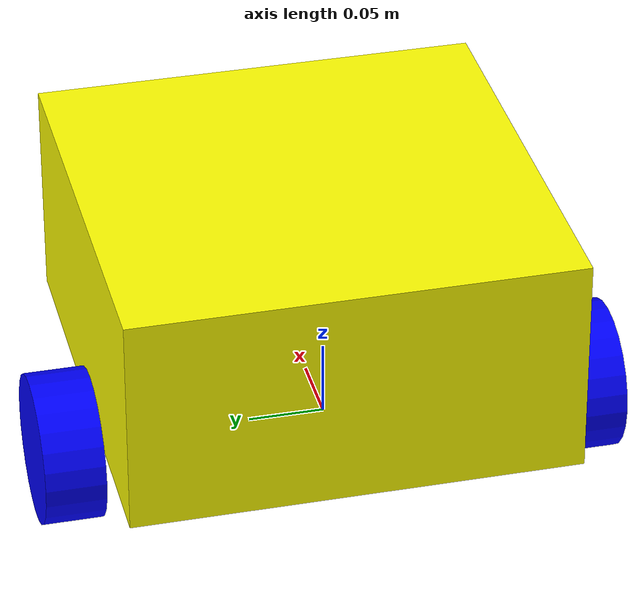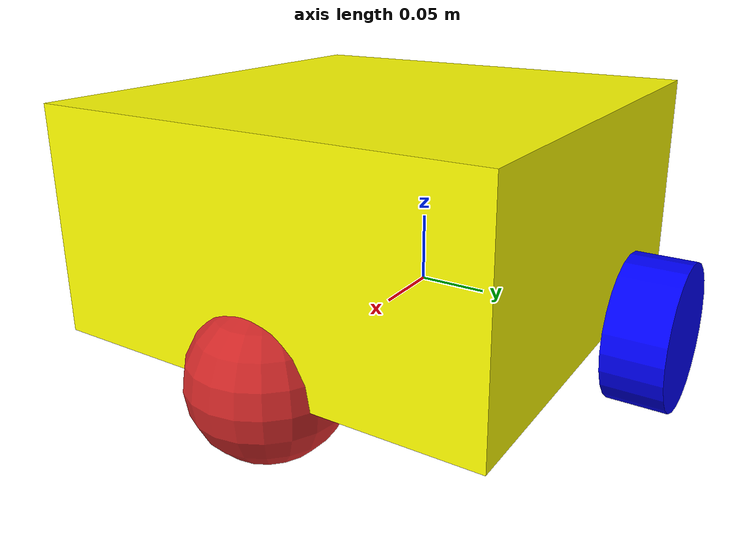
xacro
<?xml version="1.0"?>
<robot xmlns:xacro="http://www.ros.org/wiki/xacro">
        <xacro:include filename = "quan_tinh.xacro"/>

    <material name="trang">
        <color rgba="1 1 1 1"/>
    </material>

    <material name="xanhduong">
        <color rgba="0 0 1 1"/>
    </material>

    <material name="vang">
        <color rgba="1 1 0 1"/>
    </material>

    <material name="do">
        <color rgba="1 0 0 1"/>
    </material>

    <!-- BASE LINK -->
    <link name="base_link">

    </link>

    <!-- BASE_FOOTPRINT LINK -->
     <joint name = "base_footprint_joint" type="fixed">
        <parent link="base_link"/>
        <child link="base_footprint"/>
        <origin xyz="0 0 0 " rpy =" 0 0 0"/><!--hinh chieu len mat phang day, tham chieu vi tri cua robot-->
     </joint>

     <link name = "base_footprint">
     </link>

    <!-- KHUNG LINK-->
    <joint name="khung" type="fixed">
        <parent link="base_link"/>
        <child link="khung"/>
        <origin xyz="-0.1 0 0" rpy="0 0 0"/>
    </joint>

    <link name = "khung">
        <visual>
            <origin xyz ="0.15 0 0.075"/> <!--nang khung xe len, neu khong se lech truc-->
            <geometry>
                <box size = "0.3 0.3 0.15"/>
            </geometry>
            <material name= "vang"/>
        </visual>

        <collision>
            <origin xyz ="0.15 0 0.075"/>
            <geometry>
                <box size = "0.3 0.3 0.15"/>
            </geometry>
        </collision>

        <!-- them quan tinh hinh hop dac-->
        <xacro:quan_tinh_hop mass ="0.5" x ="0.3" y="0.3" z="0.15">
            <origin xyz = "0.15 0 0.075" rpy = "0 0 0"/>
        </xacro:quan_tinh_hop>

    </link>

    <gazebo reference="khung">
        <material>Gazebo/Yellow</material>
    </gazebo>

    <!-- banh trai LINK-->
     <joint name = "khop_banh_trai" type = "continuous">
        <parent link = "base_link"/>
        <child link ="banh_trai"/>
        <origin xyz = " 0 0.175 0 " rpy = "-${pi/2} 0 0"/> <!--ban than no la hinh tru nam ngang, bay gio muon quay thanh banh xe thi phai xoay het 90 quanh truc x de xoay banh doc-->
        <axis xyz = " 0 0 1"/>
     </joint>

     <link name = "banh_trai">
        <visual>
            <geometry>
                <cylinder radius ="0.05" length = " 0.04"/>
            </geometry>
            <material name = "xanhduong"/>
        </visual>

        <collision>
            <geometry>
                <cylinder radius ="0.05" length = " 0.04"/>
            </geometry>
        </collision>

        <!-- quan tinh tru dac-->
         <xacro:quan_tinh_tru mass = "0.1" length="0.4" radius="0.05">
            <origin xyz = "0 0 0" rpy ="0 0 0 "/>
         </xacro:quan_tinh_tru>

     </link>

     <gazebo reference="banh_trai">
        <material>Gazebo/Blue</material>
    </gazebo>

     <!-- banh phai LINK-->
     <joint name = "khop_banh_phai" type = "continuous">
        <parent link = "base_link"/>
        <child link ="banh_phai"/>
        <origin xyz = " 0 -0.175 0 " rpy = "${pi/2} 0 0"/> <!--ban than no la hinh tru nam ngang, bay gio muon quay thanh banh xe thi phai xoay het 90 quanh truc x de xoay banh doc-->
        <axis xyz = " 0 0 -1"/>
     </joint>

     <link name = "banh_phai">
        <visual>
            <geometry>
                <cylinder radius ="0.05" length = " 0.04"/>
            </geometry>
            <material name = "xanhduong"/>
        </visual>

        <collision>
            <geometry>
                <cylinder radius ="0.05" length = " 0.04"/>
            </geometry>
        </collision>
         <!-- quan tinh tru dac-->
         <xacro:quan_tinh_tru mass = "0.1" length="0.4" radius="0.05">
            <origin xyz = "0 0 0" rpy ="0 0 0 "/>
         </xacro:quan_tinh_tru>
     </link>

     <gazebo reference="banh_phai">
        <material>Gazebo/Blue</material>
    </gazebo>

     <!-- BANH LAN-->
      <joint name ="khop_banh_lan" type = "fixed" >
        <parent link = "base_link"/>
        <child link = "banh_lan"/>
        <origin xyz = "0.18 0 0"/>
      </joint>

      <link name = "banh_lan">
        <visual>
            <geometry>
                <sphere radius = " 0.05"/>
            </geometry>
            <meterial name = "do"/>
        </visual>

        <collision>
            <geometry>
                <sphere radius = " 0.05"/>
            </geometry>
        </collision>
        <!-- quan tinh cau-->
         <xacro:quan_tinh_cau mass="0.1" radius="0.05">
            <origin xyz = "0 0 0" ryp = " 0 0 0"/>
         </xacro:quan_tinh_cau>

      </link>

      <gazebo reference="banh_lan">
        <material>Gazebo/Red</material>
        <mu1  value = "0.001"/>
        <mu2 value = "0.001"/>
    </gazebo>

</robot>

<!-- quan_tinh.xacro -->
<robot xmlns:xacro="http://www.ros.org/wiki/xacro" >

    <!-- https://en.wikipedia.org/wiki/List_of_moments_of_inertia -->

    <xacro:macro name="quan_tinh_cau" params="mass radius *origin">
        <inertial>
            <xacro:insert_block name="origin"/>
            <mass value="${mass}" />
            <inertia ixx="${(2/5) * mass * (radius*radius)}" ixy="0.0" ixz="0.0"
                    iyy="${(2/5) * mass * (radius*radius)}" iyz="0.0"
                    izz="${(2/5) * mass * (radius*radius)}" />
        </inertial>
    </xacro:macro>

    <xacro:macro name="quan_tinh_hop" params="mass x y z *origin">
        <inertial>
            <xacro:insert_block name="origin"/>
            <mass value="${mass}" />
            <inertia ixx="${(1/12) * mass * (y*y+z*z)}" ixy="0.0" ixz="0.0"
                    iyy="${(1/12) * mass * (x*x+z*z)}" iyz="0.0"
                    izz="${(1/12) * mass * (x*x+y*y)}" />
        </inertial>
    </xacro:macro>

    <xacro:macro name="quan_tinh_tru" params="mass length radius *origin">
        <inertial>
            <xacro:insert_block name="origin"/>
            <mass value="${mass}" />
            <inertia ixx="${(1/12) * mass * (3*radius*radius + length*length)}" ixy="0.0" ixz="0.0"
                    iyy="${(1/12) * mass * (3*radius*radius + length*length)}" iyz="0.0"
                    izz="${(1/2) * mass * (radius*radius)}" />
        </inertial>
    </xacro:macro>

</robot>
